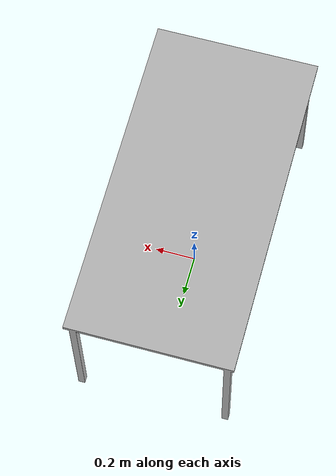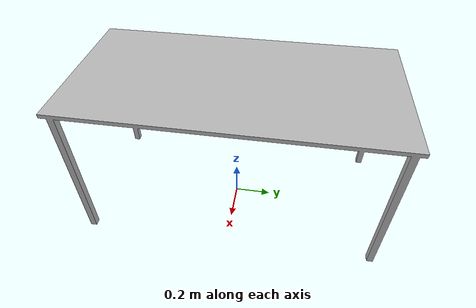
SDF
<?xml version="1.0" ?>
<sdf version="1.4">
  <model name="cafe_table">
    <static>true</static>
    <link name="link">
      <collision name="base">
        <pose>0 0 0.02 0 0 0</pose>
        <geometry>
          <box>
            <size>0.8 1.6 0.8</size>
          </box>
        </geometry>
      </collision>

      <visual name="visual">
        <geometry>
          <mesh>
            <uri>model://igent_table/meshes/igent_table.dae</uri>
          </mesh>
        </geometry>
      </visual>
    </link>
  </model>
</sdf>
